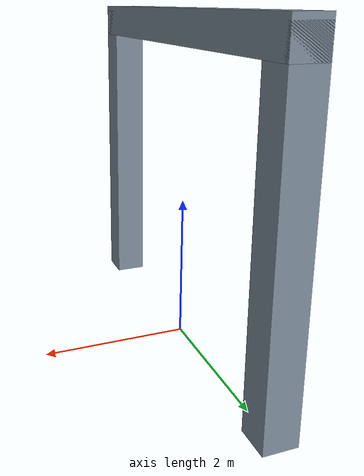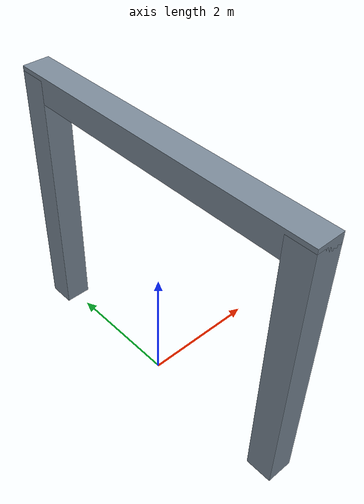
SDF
<?xml version="1.0"?>
<sdf version="1.6">
  <model name="gate_frame">
    <static>true</static>
    <link name="gate_link">
      <collision name="left_post_collision">
        <pose>0 2.5 2.25 0 0 0</pose>
        <geometry>
          <box><size>0.45 0.45 4.50</size></box>
        </geometry>
        <surface>
          <contact><collide_without_contact>true</collide_without_contact></contact>
        </surface>
      </collision>
      <visual name="left_post_visual">
        <pose>0 2.5 2.25 0 0 0</pose>
        <geometry>
          <box><size>0.45 0.45 4.50</size></box>
        </geometry>
        <material>
          <ambient>0.26 0.30 0.34 1</ambient>
          <diffuse>0.48 0.54 0.60 1</diffuse>
        </material>
      </visual>

      <collision name="right_post_collision">
        <pose>0 -2.5 2.25 0 0 0</pose>
        <geometry>
          <box><size>0.45 0.45 4.50</size></box>
        </geometry>
        <surface>
          <contact><collide_without_contact>true</collide_without_contact></contact>
        </surface>
      </collision>
      <visual name="right_post_visual">
        <pose>0 -2.5 2.25 0 0 0</pose>
        <geometry>
          <box><size>0.45 0.45 4.50</size></box>
        </geometry>
        <material>
          <ambient>0.26 0.30 0.34 1</ambient>
          <diffuse>0.48 0.54 0.60 1</diffuse>
        </material>
      </visual>

      <collision name="top_beam_collision">
        <pose>0 0 4.35 0 0 0</pose>
        <geometry>
          <box><size>0.45 5.45 0.45</size></box>
        </geometry>
        <surface>
          <contact><collide_without_contact>true</collide_without_contact></contact>
        </surface>
      </collision>
      <visual name="top_beam_visual">
        <pose>0 0 4.35 0 0 0</pose>
        <geometry>
          <box><size>0.45 5.45 0.45</size></box>
        </geometry>
        <material>
          <ambient>0.26 0.30 0.34 1</ambient>
          <diffuse>0.48 0.54 0.60 1</diffuse>
        </material>
      </visual>
    </link>
  </model>
</sdf>
